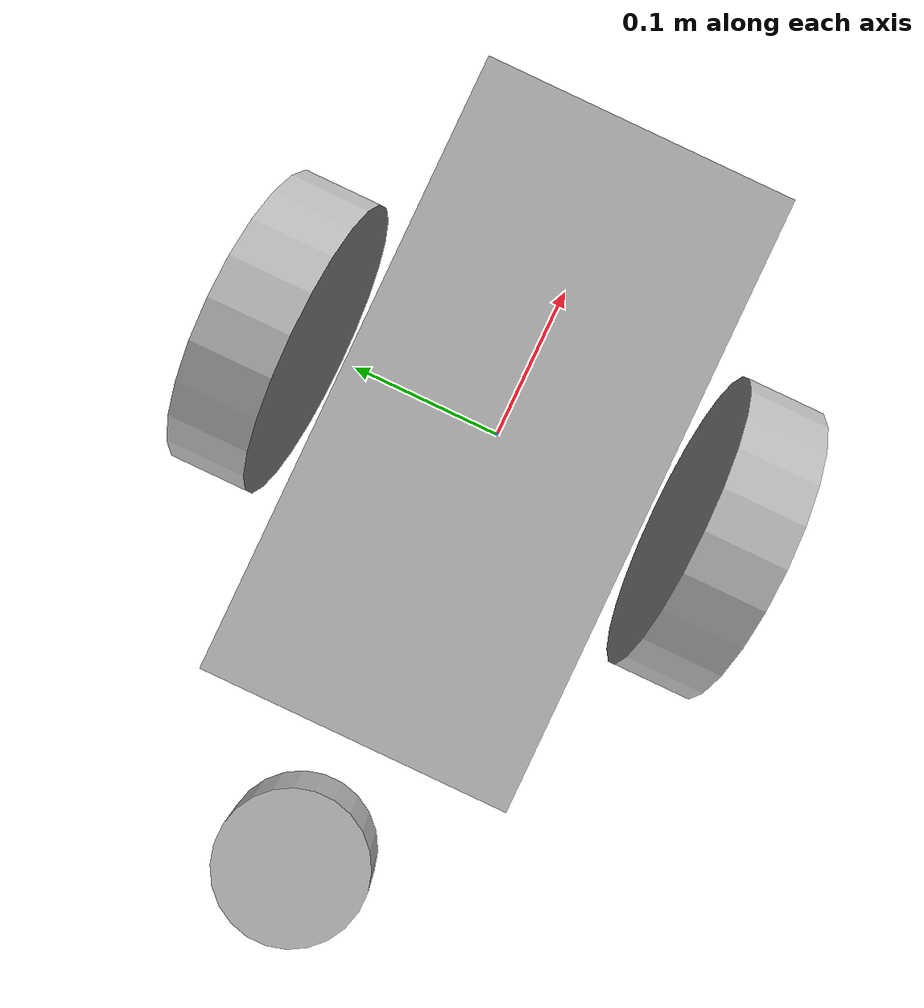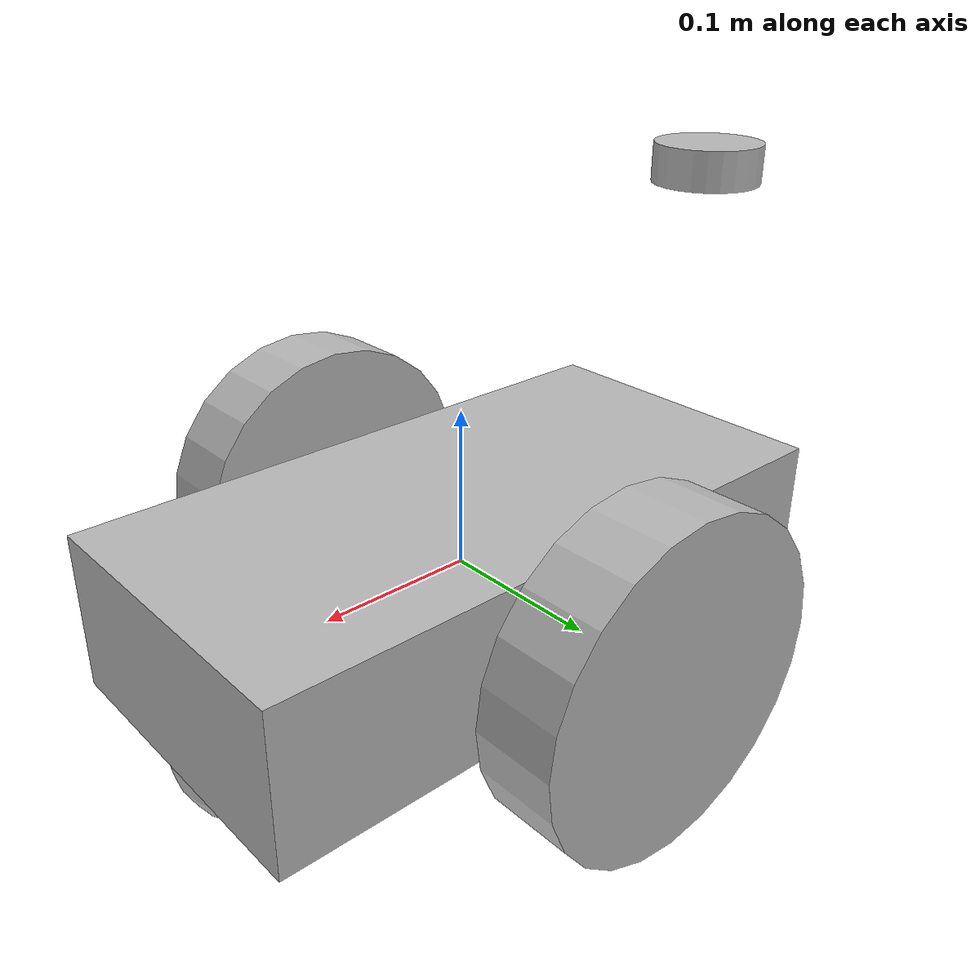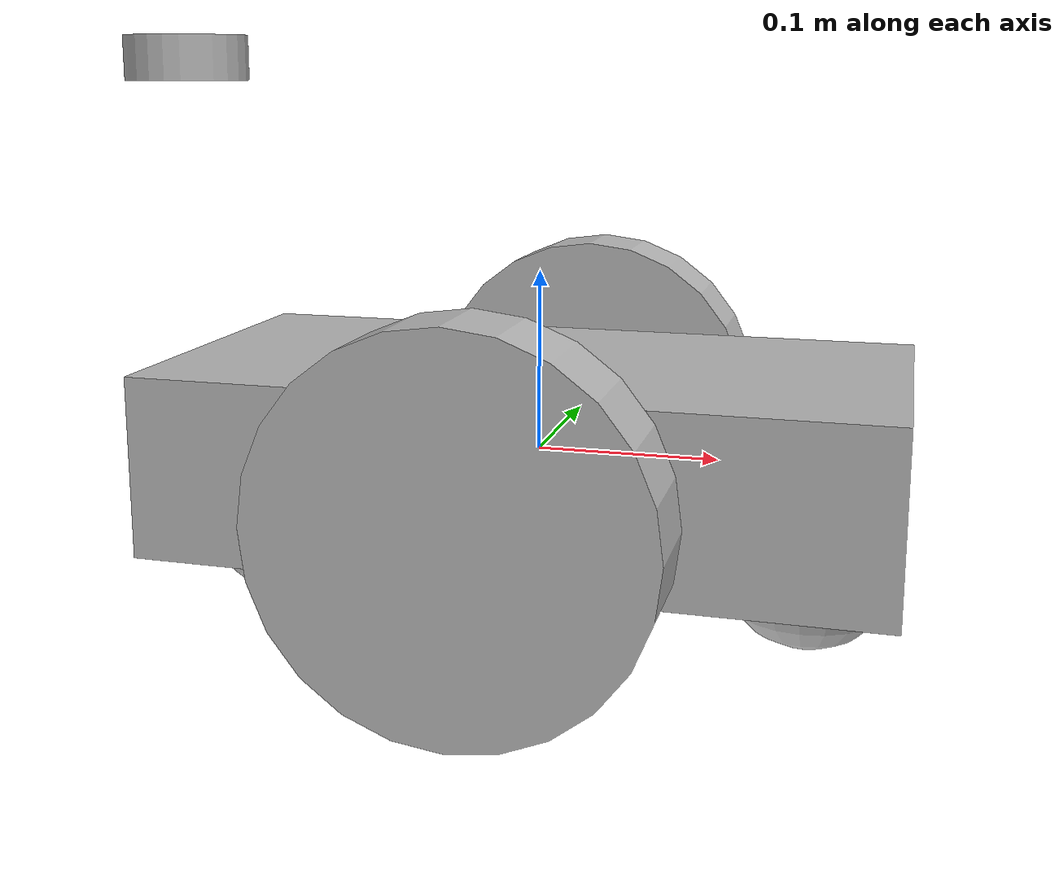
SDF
<sdf version='1.7'>
  <model name='test_diff_drive'>
    <link name='base_link'>
      <inertial>
        <pose>-0.003426 0 0.101877 0 -0 0</pose>
        <mass>15.25</mass>
        <inertia>
          <ixx>0.105224</ixx>
          <ixy>0</ixy>
          <ixz>0.00588455</ixz>
          <iyy>0.115965</iyy>
          <iyz>0</iyz>
          <izz>0.112741</izz>
        </inertia>
      </inertial>
      <collision name='base_link_fixed_joint_lump__collision_collision'>
        <pose>0 0 0 0 -0 0</pose>
        <geometry>
          <box>
            <size>0.4 0.2 0.1</size>
          </box>
        </geometry>
      </collision>
      <collision name='base_link_fixed_joint_lump__caster_collision_collision_1'>
        <pose>-0.15 0 -0.05 0 -0 0</pose>
        <geometry>
          <sphere>
            <radius>0.05</radius>
          </sphere>
        </geometry>
      </collision>
      <collision name='base_link_fixed_joint_lump__caster_front_collision_collision_2'>
        <pose>0.15 0 -0.05 0 -0 0</pose>
        <geometry>
          <sphere>
            <radius>0.05</radius>
          </sphere>
        </geometry>
      </collision>
      <visual name='base_link_fixed_joint_lump__chassis_visual_visual'>
        <pose>0 0 0 0 -0 0</pose>
        <geometry>
          <box>
            <size>0.4 0.2 0.1</size>
          </box>
        </geometry>
      </visual>
      <visual name='base_link_fixed_joint_lump__caster_visual_visual_1'>
        <pose>-0.15 0 -0.05 0 -0 0</pose>
        <geometry>
          <sphere>
            <radius>0.05</radius>
          </sphere>
        </geometry>
      </visual>
      <visual name='base_link_fixed_joint_lump__caster_front_visual_visual_2'>
        <pose>0.15 0 -0.05 0 -0 0</pose>
        <geometry>
          <sphere>
            <radius>0.05</radius>
          </sphere>
        </geometry>
      </visual>
      <visual name='base_link_fixed_joint_lump__imu_link_visual_3'>
        <pose>-0.209 0 0.2145 0 -0 1.17918</pose>
        <geometry>
          <cylinder>
            <length>0.0254</length>
            <radius>0.034925</radius>
          </cylinder>
        </geometry>
      </visual>
      <visual name='base_link_fixed_joint_lump__lidar_link_visual_4'>
        <pose>-0.209 0 0.2145 0 -0 1.17918</pose>
        <geometry>
          <cylinder>
            <length>0.0254</length>
            <radius>0.034925</radius>
          </cylinder>
        </geometry>
      </visual>
      <sensor name='imu_sensor' type='imu'>
        <plugin name='imu_plugin' filename='libgazebo_ros_imu_sensor.so'>
          <ros>
            <remapping>~/out:=imu</remapping>
          </ros>
          <initial_orientation_as_reference>0</initial_orientation_as_reference>
        </plugin>
        <always_on>1</always_on>
        <update_rate>100</update_rate>
        <visualize>1</visualize>
        <imu>
          <angular_velocity>
            <x>
              <noise type='gaussian'>
                <mean>0</mean>
                <stddev>0.0002</stddev>
                <bias_mean>7.5e-06</bias_mean>
                <bias_stddev>8e-07</bias_stddev>
              </noise>
            </x>
            <y>
              <noise type='gaussian'>
                <mean>0</mean>
                <stddev>0.0002</stddev>
                <bias_mean>7.5e-06</bias_mean>
                <bias_stddev>8e-07</bias_stddev>
              </noise>
            </y>
            <z>
              <noise type='gaussian'>
                <mean>0</mean>
                <stddev>0.0002</stddev>
                <bias_mean>7.5e-06</bias_mean>
                <bias_stddev>8e-07</bias_stddev>
              </noise>
            </z>
          </angular_velocity>
          <linear_acceleration>
            <x>
              <noise type='gaussian'>
                <mean>0</mean>
                <stddev>0.017</stddev>
                <bias_mean>0.1</bias_mean>
                <bias_stddev>0.001</bias_stddev>
              </noise>
            </x>
            <y>
              <noise type='gaussian'>
                <mean>0</mean>
                <stddev>0.017</stddev>
                <bias_mean>0.1</bias_mean>
                <bias_stddev>0.001</bias_stddev>
              </noise>
            </y>
            <z>
              <noise type='gaussian'>
                <mean>0</mean>
                <stddev>0.017</stddev>
                <bias_mean>0.1</bias_mean>
                <bias_stddev>0.001</bias_stddev>
              </noise>
            </z>
          </linear_acceleration>
        </imu>
      </sensor>
      <sensor name='lidar' type='ray'>
        <always_on>1</always_on>
        <visualize>1</visualize>
        <update_rate>5</update_rate>
        <ray>
          <scan>
            <horizontal>
              <samples>360</samples>
              <resolution>1</resolution>
              <min_angle>0</min_angle>
              <max_angle>6.28</max_angle>
            </horizontal>
          </scan>
          <range>
            <min>0.12</min>
            <max>3.5</max>
            <resolution>0.015</resolution>
          </range>
          <noise>
            <type>gaussian</type>
            <mean>0</mean>
            <stddev>0.01</stddev>
          </noise>
        </ray>
        <plugin name='scan' filename='libgazebo_ros_ray_sensor.so'>
          <ros>
            <remapping>~/out:=scan</remapping>
          </ros>
          <output_type>sensor_msgs/LaserScan</output_type>
          <frame_name>lidar_link</frame_name>
        </plugin>
        <pose>-0.209 0 0.2145 0 -0 1.17918</pose>
      </sensor>
    </link>
    <joint name='left_wheel_hinge' type='revolute'>
      <pose relative_to='base_link'>0 0.15 0 0 -0 0</pose>
      <parent>base_link</parent>
      <child>left_wheel</child>
      <axis>
        <xyz>0 1 0</xyz>
        <limit>
          <effort>10000</effort>
          <velocity>1000</velocity>
          <lower>-1e+16</lower>
          <upper>1e+16</upper>
        </limit>
        <dynamics>
          <spring_reference>0</spring_reference>
          <spring_stiffness>0</spring_stiffness>
        </dynamics>
      </axis>
    </joint>
    <link name='left_wheel'>
      <pose relative_to='left_wheel_hinge'>0 0 0 0 -0 0</pose>
      <inertial>
        <pose>0 0 0 0 1.5707 1.5707</pose>
        <mass>5</mass>
        <inertia>
          <ixx>0.1</ixx>
          <ixy>0</ixy>
          <ixz>0</ixz>
          <iyy>0.1</iyy>
          <iyz>0</iyz>
          <izz>0.1</izz>
        </inertia>
      </inertial>
      <collision name='left_wheel_fixed_joint_lump__collision_collision'>
        <pose>0 0 0 -1.5707 1.5708 0</pose>
        <geometry>
          <cylinder>
            <length>0.05</length>
            <radius>0.1</radius>
          </cylinder>
        </geometry>
      </collision>
      <visual name='left_wheel_visual_visual'>
        <pose>0 0 0 -1.5707 1.5708 0</pose>
        <geometry>
          <cylinder>
            <length>0.05</length>
            <radius>0.1</radius>
          </cylinder>
        </geometry>
      </visual>
    </link>
    <joint name='right_wheel_hinge' type='revolute'>
      <pose relative_to='base_link'>0 -0.15 0 0 -0 0</pose>
      <parent>base_link</parent>
      <child>right_wheel</child>
      <axis>
        <xyz>0 1 0</xyz>
        <limit>
          <effort>10000</effort>
          <velocity>1000</velocity>
          <lower>-1e+16</lower>
          <upper>1e+16</upper>
        </limit>
        <dynamics>
          <spring_reference>0</spring_reference>
          <spring_stiffness>0</spring_stiffness>
        </dynamics>
      </axis>
    </joint>
    <link name='right_wheel'>
      <pose relative_to='right_wheel_hinge'>0 0 0 0 -0 0</pose>
      <inertial>
        <pose>0 0 0 0 1.5707 1.5707</pose>
        <mass>5</mass>
        <inertia>
          <ixx>0.1</ixx>
          <ixy>0</ixy>
          <ixz>0</ixz>
          <iyy>0.1</iyy>
          <iyz>0</iyz>
          <izz>0.1</izz>
        </inertia>
      </inertial>
      <collision name='right_wheel_fixed_joint_lump__collision_collision'>
        <pose>0 0 0 -1.5707 1.5708 0</pose>
        <geometry>
          <cylinder>
            <length>0.05</length>
            <radius>0.1</radius>
          </cylinder>
        </geometry>
      </collision>
      <visual name='right_wheel_visual_visual'>
        <pose>0 0 0 -1.5707 1.5708 0</pose>
        <geometry>
          <cylinder>
            <length>0.05</length>
            <radius>0.1</radius>
          </cylinder>
        </geometry>
      </visual>
    </link>
    <static>0</static>
    <plugin name='gazebo_ros_diff_drive' filename='libgazebo_ros_diff_drive.so'>
      <update_rate>30.0</update_rate>
      <left_joint>left_wheel_hinge</left_joint>
      <right_joint>right_wheel_hinge</right_joint>
      <wheel_separation>1.25</wheel_separation>
      <wheel_diameter>0.6</wheel_diameter>
      <max_wheel_torque>20</max_wheel_torque>
      <max_wheel_acceleration>1.0</max_wheel_acceleration>
      <command_topic>cmd_vel</command_topic>
      <odometrySource>1</odometrySource>
      <publish_odom>1</publish_odom>
      <publish_odom_tf>1</publish_odom_tf>
      <publish_wheel_tf>1</publish_wheel_tf>
      <odometry_topic>odom</odometry_topic>
      <odometry_frame>odom</odometry_frame>
      <robot_base_frame>base_link</robot_base_frame>
    </plugin>
  </model>
</sdf>
